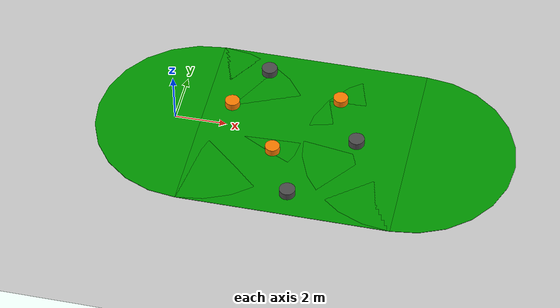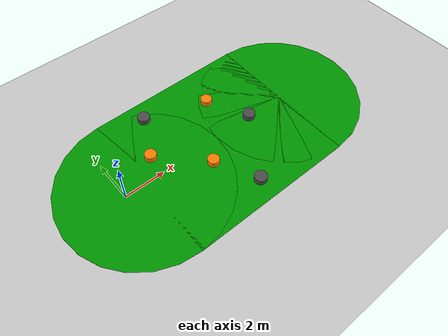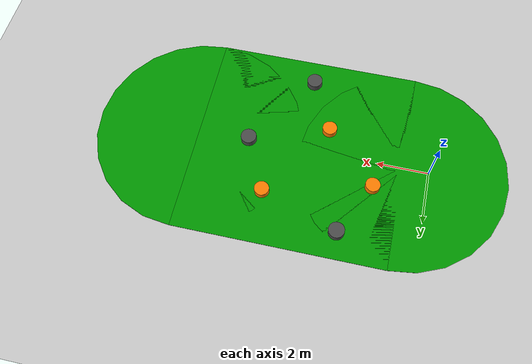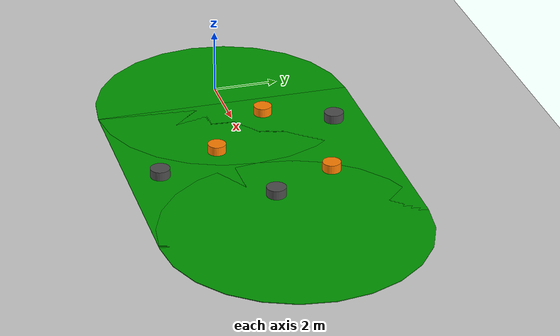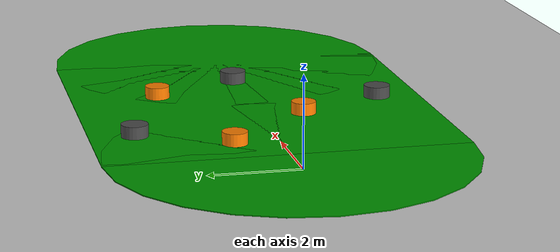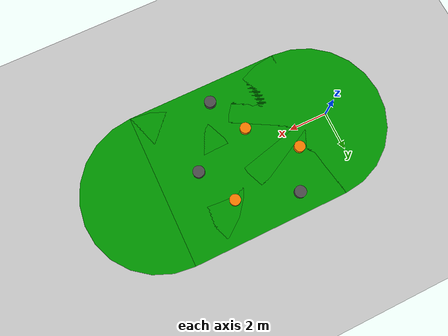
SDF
<?xml version="1.0" ?>
<sdf version="1.8">
    <world name="pioneer_world">
        <physics name="1ms" type="ignored">
            <max_step_size>0.001</max_step_size>
            <real_time_factor>1.0</real_time_factor>
        </physics>
        <plugin
            filename="libgz-sim-physics-system"
            name="gz::sim::systems::Physics">
        </plugin>
        <plugin
            filename="libgz-sim-user-commands-system"
            name="gz::sim::systems::UserCommands">
        </plugin>
        <plugin
            filename="libgz-sim-scene-broadcaster-system"
            name="gz::sim::systems::SceneBroadcaster">
        </plugin>
        <plugin filename="libgz-sim-imu-system"
                name="gz::sim::systems::Imu">
        </plugin>
        <plugin filename="libgz-sim-sensors-system.so"
                name="gz::sim::systems::Sensors">
        </plugin>
        <plugin filename="libgz-sim-contact-system"
                name="gz::sim::systems::Contact">
        </plugin>

        <light type="directional" name="sun">
                <cast_shadows>true</cast_shadows>
                <pose>0 0 10 0 0 0</pose>
                <diffuse>0.8 0.8 0.8 1</diffuse>
                <specular>0.2 0.2 0.2 1</specular>
                <attenuation>
                    <range>1000</range>
                    <constant>0.9</constant>
                    <linear>0.01</linear>
                    <quadratic>0.001</quadratic>
                </attenuation>
                <direction>-0.5 0.1 -0.9</direction>
            </light>

            <visual name="visual">
            <geometry>
                <plane>
                <normal>0 0 1</normal>
                <size>100 100</size>
                </plane>
            </geometry>

            <material>
                <script>
                <uri>file://media/materials/scripts/gazebo.material</uri>
                <name>Gazebo/Grass</name>
                </script>
            </material>
            </visual>

            <model name="ground_plane">
                <static>true</static>
                <link name="link">
                    <collision name="collision">
                    <geometry>
                        <plane>
                        <normal>0 0 1</normal>
                        </plane>
                    </geometry>
                    </collision>
                    <visual name="visual">
                    <geometry>
                        <plane>
                        <normal>0 0 1</normal>
                        <size>100 100</size>
                        </plane>
                    </geometry>
                    <material>
                        <ambient>0.8 0.8 0.8 1</ambient>
                        <diffuse>0.8 0.8 0.8 1</diffuse>
                        <specular>0.8 0.8 0.8 1</specular>
                    </material>
                    </visual>
                </link>
            </model>

            <model name="oval_track">
                <static>true</static>
                <pose>5 0 0.01 0 0 0</pose>

                <!-- Middle rectangle -->
                <link name="center">
                    <visual name="center_visual">
                    <pose>0 0 0 0 0 0</pose>
                    <geometry>
                        <box>
                        <size>8 8 0.02</size>
                        </box>
                    </geometry>
                    <material>
                        <ambient>0 0.6 0 1</ambient>
                        <diffuse>0 0.6 0 1</diffuse>
                    </material>
                    </visual>
                </link>

                <!-- Left round end -->
                <link name="left_end">
                    <visual name="left_visual">
                    <pose>-4 0 0 0 0 0</pose>
                    <geometry>
                        <cylinder>
                        <radius>4</radius>
                        <length>0.02</length>
                        </cylinder>
                    </geometry>
                    <material>
                        <ambient>0 0.6 0 1</ambient>
                        <diffuse>0 0.6 0 1</diffuse>
                    </material>
                    </visual>
                </link>

                <!-- Right round end -->
                <link name="right_end">
                    <visual name="right_visual">
                    <pose>4 0 0 0 0 0</pose>
                    <geometry>
                        <cylinder>
                        <radius>4</radius>
                        <length>0.02</length>
                        </cylinder>
                    </geometry>
                    <material>
                        <ambient>0 0.6 0 1</ambient>
                        <diffuse>0 0.6 0 1</diffuse>
                    </material>
                    </visual>
                </link>
            </model>

            <model name="cone_1">
            <static>true</static>
            <pose>2 1 0 0 0 0</pose>
            <link name="link">
                <visual name="visual">
                <geometry>
                    <cylinder>
                    <radius>0.28</radius>
                    <length>0.6</length>
                    </cylinder>
                </geometry>
                <material>
                    <ambient>1.0 0.5 0.0 1</ambient>
                    <diffuse>1.0 0.5 0.0 1</diffuse>
                    <specular>1.0 0.5 0.0 1</specular>
                </material>
                </visual>
                <collision name="collision">
                <geometry>
                    <cylinder>
                    <radius>0.28</radius>
                    <length>0.6</length>
                    </cylinder>
                </geometry>
                </collision>
            </link>
            </model>

            <model name="cone_2">
            <static>true</static>
            <pose>4 -1 0 0 0 0</pose>
            <link name="link">
                <visual name="visual">
                <geometry>
                    <cylinder>
                    <radius>0.28</radius>
                    <length>0.6</length>
                    </cylinder>
                </geometry>
                <material>
                    <ambient>1.0 0.5 0.0 1</ambient>
                    <diffuse>1.0 0.5 0.0 1</diffuse>
                    <specular>1.0 0.5 0.0 1</specular>
                </material>
                </visual>
                <collision name="collision">
                <geometry>
                    <cylinder>
                    <radius>0.28</radius>
                    <length>0.6</length>
                    </cylinder>
                </geometry>
                </collision>
            </link>
            </model>

            <model name="cone_3">
            <static>true</static>
            <pose>6 2 0 0 0 0</pose>
            <link name="link">
                <visual name="visual">
                <geometry>
                    <cylinder>
                    <radius>0.28</radius>
                    <length>0.6</length>
                    </cylinder>
                </geometry>
                <material>
                    <ambient>1.0 0.5 0.0 1</ambient>
                    <diffuse>1.0 0.5 0.0 1</diffuse>
                    <specular>1.0 0.5 0.0 1</specular>
                </material>
                </visual>
                <collision name="collision">
                <geometry>
                    <cylinder>
                    <radius>0.28</radius>
                    <length>0.6</length>
                    </cylinder>
                </geometry>
                </collision>
            </link>
            </model>

            <model name="bucket_1">
            <static>true</static>
            <pose>3 3 0 0 0 0</pose>
            <link name="link">
                <visual name="visual">
                <geometry>
                    <cylinder>
                    <radius>0.3</radius>
                    <length>0.6</length>
                    </cylinder>
                </geometry>
                <material>
                    <ambient>0.3 0.3 0.3 1</ambient>
                    <diffuse>0.3 0.3 0.3 1</diffuse>
                    <specular>0.3 0.3 0.3 1</specular>
                </material>
                </visual>
                <collision name="collision">
                <geometry>
                    <cylinder>
                    <radius>0.3</radius>
                    <length>0.6</length>
                    </cylinder>
                </geometry>
                </collision>
            </link>
            </model>

            <model name="bucket_2">
            <static>true</static>
            <pose>5 -3 0 0 0 0</pose>
            <link name="link">
                <visual name="visual">
                <geometry>
                    <cylinder>
                    <radius>0.3</radius>
                    <length>0.6</length>
                    </cylinder>
                </geometry>
                <material>
                    <ambient>0.3 0.3 0.3 1</ambient>
                    <diffuse>0.3 0.3 0.3 1</diffuse>
                    <specular>0.3 0.3 0.3 1</specular>
                </material>
                </visual>
                <collision name="collision">
                <geometry>
                    <cylinder>
                    <radius>0.3</radius>
                    <length>0.6</length>
                    </cylinder>
                </geometry>
                </collision>
            </link>
            </model>

            <model name="bucket_3">
            <static>true</static>
            <pose>7 0 0 0 0 0</pose>
            <link name="link">
                <visual name="visual">
                <geometry>
                    <cylinder>
                    <radius>0.3</radius>
                    <length>0.6</length>
                    </cylinder>
                </geometry>
                <material>
                    <ambient>0.3 0.3 0.3 1</ambient>
                    <diffuse>0.3 0.3 0.3 1</diffuse>
                    <specular>0.3 0.3 0.3 1</specular>
                </material>
                </visual>
                <collision name="collision">
                <geometry>
                    <cylinder>
                    <radius>0.3</radius>
                    <length>0.6</length>
                    </cylinder>
                </geometry>
                </collision>
            </link>
            </model>

    </world>
</sdf>
